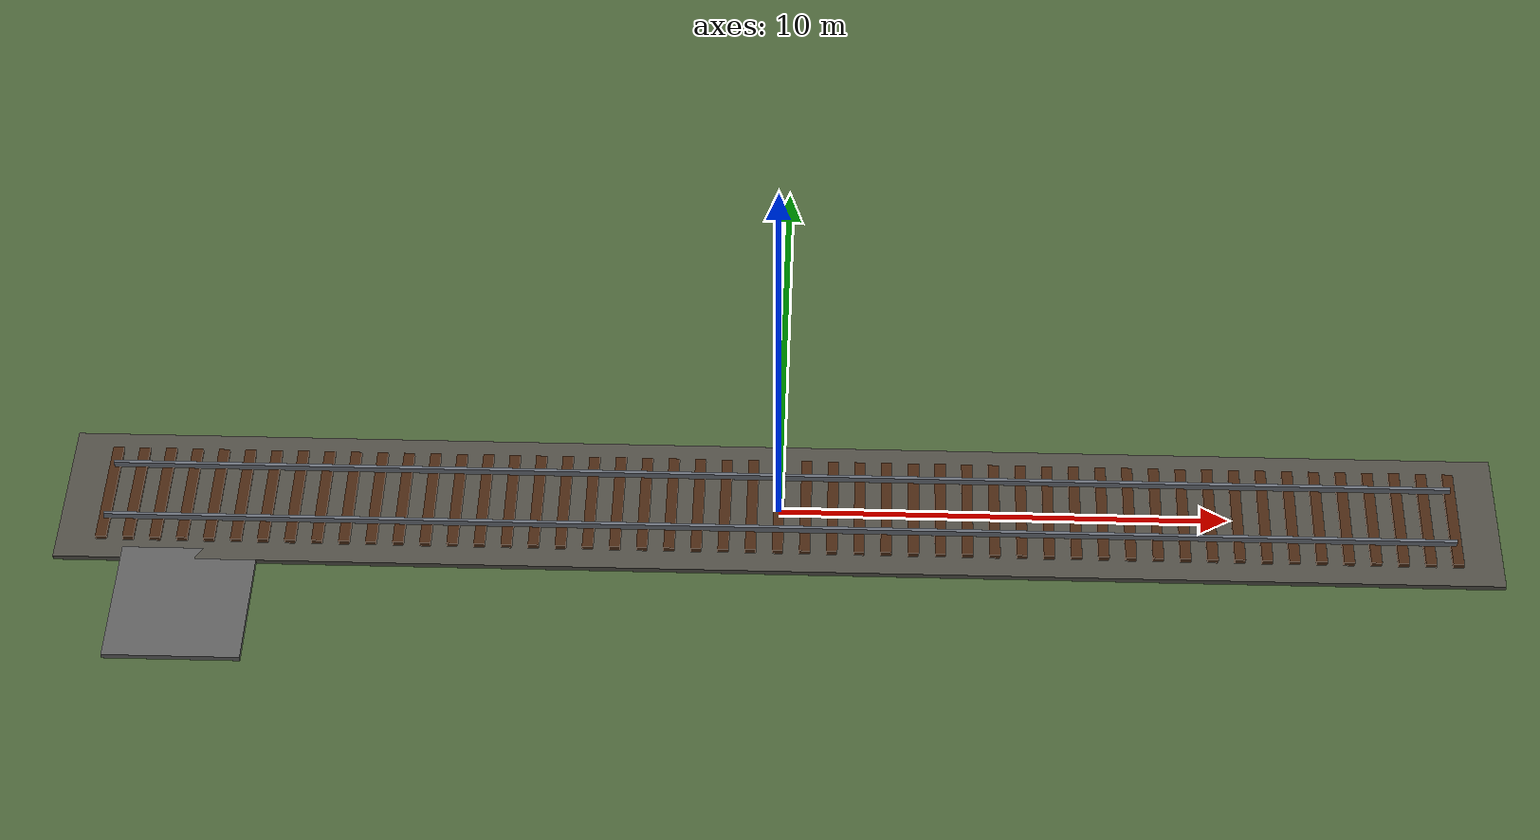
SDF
<?xml version="1.0" encoding="UTF-8"?>
<sdf version="1.9">
  <world name="rail_demo">
    <physics type="ode">
      <max_step_size>0.004</max_step_size>
      <real_time_factor>1.0</real_time_factor>
      <real_time_update_rate>250</real_time_update_rate>
    </physics>
    <gravity>0 0 -9.8</gravity>
    <magnetic_field>6e-06 2.3e-05 -4.2e-05</magnetic_field>
    <atmosphere type="adiabatic"/>

    <scene>
      <grid>false</grid>
      <ambient>0.45 0.45 0.42 1</ambient>
      <background>0.70 0.78 0.86 1</background>
      <shadows>true</shadows>
    </scene>

    <model name="ground_plane">
      <static>true</static>
      <link name="link">
        <collision name="collision">
          <geometry><plane><normal>0 0 1</normal><size>1 1</size></plane></geometry>
          <surface><friction><ode/></friction><bounce/><contact/></surface>
        </collision>
        <visual name="visual">
          <geometry><plane><normal>0 0 1</normal><size>200 100</size></plane></geometry>
          <material>
            <ambient>0.20 0.28 0.16 1</ambient>
            <diffuse>0.30 0.40 0.23 1</diffuse>
            <specular>0.02 0.02 0.02 1</specular>
          </material>
        </visual>
      </link>
    </model>

    <include>
      <uri>model://rail_track</uri>
      <name>main_track</name>
      <pose>0 0 0 0 0 0</pose>
    </include>

    <!-- A flat pad keeps the X500 away from rail collisions at startup. -->
    <model name="launch_pad">
      <static>true</static>
      <pose>-13 -3 0.06 0 0 0</pose>
      <link name="link">
        <collision name="collision">
          <geometry><box><size>3 3 0.12</size></box></geometry>
        </collision>
        <visual name="visual">
          <geometry><box><size>3 3 0.12</size></box></geometry>
          <material>
            <ambient>0.28 0.28 0.28 1</ambient>
            <diffuse>0.38 0.38 0.38 1</diffuse>
            <specular>0.08 0.08 0.08 1</specular>
          </material>
        </visual>
      </link>
    </model>

    <light name="sunUTC" type="directional">
      <pose>0 0 500 0 0 0</pose>
      <cast_shadows>true</cast_shadows>
      <intensity>1</intensity>
      <direction>-0.25 0.45 -0.86</direction>
      <diffuse>0.92 0.90 0.84 1</diffuse>
      <specular>0.25 0.25 0.25 1</specular>
      <attenuation>
        <range>2000</range><linear>0</linear><constant>1</constant><quadratic>0</quadratic>
      </attenuation>
    </light>

    <spherical_coordinates>
      <surface_model>EARTH_WGS84</surface_model>
      <world_frame_orientation>ENU</world_frame_orientation>
      <latitude_deg>47.397971057728974</latitude_deg>
      <longitude_deg>8.546163739800146</longitude_deg>
      <elevation>0</elevation>
    </spherical_coordinates>
  </world>
</sdf>

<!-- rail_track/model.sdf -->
<!-- Generated by tools/generate_gazebo_rail_world.py. -->
<sdf version="1.9">
  <model name="rail_track">
    <static>true</static>
    <link name="track">
      <collision name="ballast_collision">
        <pose>0 0 0.060 0 0 0</pose>
        <geometry><box><size>32.000 3.600 0.120</size></box></geometry>
      </collision>
      <visual name="ballast_visual">
        <pose>0 0 0.060 0 0 0</pose>
        <geometry><box><size>32.000 3.600 0.120</size></box></geometry>
        <material>
          <ambient>0.22 0.22 0.20 1</ambient>
          <diffuse>0.32 0.31 0.28 1</diffuse>
          <specular>0.04 0.04 0.04 1</specular>
        </material>
      </visual>
      <collision name="sleeper_000_collision">
        <pose>-15.000 0 0.160 0 0 0</pose>
        <geometry><box><size>0.240 2.600 0.160</size></box></geometry>
      </collision>
      <visual name="sleeper_000_visual">
        <pose>-15.000 0 0.160 0 0 0</pose>
        <geometry><box><size>0.240 2.600 0.160</size></box></geometry>
        <material>
          <ambient>0.20 0.11 0.055 1</ambient>
          <diffuse>0.29 0.16 0.075 1</diffuse>
          <specular>0.015 0.015 0.015 1</specular>
        </material>
      </visual>
      <collision name="sleeper_001_collision">
        <pose>-14.400 0 0.160 0 0 0</pose>
        <geometry><box><size>0.240 2.600 0.160</size></box></geometry>
      </collision>
      <visual name="sleeper_001_visual">
        <pose>-14.400 0 0.160 0 0 0</pose>
        <geometry><box><size>0.240 2.600 0.160</size></box></geometry>
        <material>
          <ambient>0.20 0.11 0.055 1</ambient>
          <diffuse>0.29 0.16 0.075 1</diffuse>
          <specular>0.015 0.015 0.015 1</specular>
        </material>
      </visual>
      <collision name="sleeper_002_collision">
        <pose>-13.800 0 0.160 0 0 0</pose>
        <geometry><box><size>0.240 2.600 0.160</size></box></geometry>
      </collision>
      <visual name="sleeper_002_visual">
        <pose>-13.800 0 0.160 0 0 0</pose>
        <geometry><box><size>0.240 2.600 0.160</size></box></geometry>
        <material>
          <ambient>0.20 0.11 0.055 1</ambient>
          <diffuse>0.29 0.16 0.075 1</diffuse>
          <specular>0.015 0.015 0.015 1</specular>
        </material>
      </visual>
      <collision name="sleeper_003_collision">
        <pose>-13.200 0 0.160 0 0 0</pose>
        <geometry><box><size>0.240 2.600 0.160</size></box></geometry>
      </collision>
      <visual name="sleeper_003_visual">
        <pose>-13.200 0 0.160 0 0 0</pose>
        <geometry><box><size>0.240 2.600 0.160</size></box></geometry>
        <material>
          <ambient>0.20 0.11 0.055 1</ambient>
          <diffuse>0.29 0.16 0.075 1</diffuse>
          <specular>0.015 0.015 0.015 1</specular>
        </material>
      </visual>
      <collision name="sleeper_004_collision">
        <pose>-12.600 0 0.160 0 0 0</pose>
        <geometry><box><size>0.240 2.600 0.160</size></box></geometry>
      </collision>
      <visual name="sleeper_004_visual">
        <pose>-12.600 0 0.160 0 0 0</pose>
        <geometry><box><size>0.240 2.600 0.160</size></box></geometry>
        <material>
          <ambient>0.20 0.11 0.055 1</ambient>
          <diffuse>0.29 0.16 0.075 1</diffuse>
          <specular>0.015 0.015 0.015 1</specular>
        </material>
      </visual>
      <collision name="sleeper_005_collision">
        <pose>-12.000 0 0.160 0 0 0</pose>
        <geometry><box><size>0.240 2.600 0.160</size></box></geometry>
      </collision>
      <visual name="sleeper_005_visual">
        <pose>-12.000 0 0.160 0 0 0</pose>
        <geometry><box><size>0.240 2.600 0.160</size></box></geometry>
        <material>
          <ambient>0.20 0.11 0.055 1</ambient>
          <diffuse>0.29 0.16 0.075 1</diffuse>
          <specular>0.015 0.015 0.015 1</specular>
        </material>
      </visual>
      <collision name="sleeper_006_collision">
        <pose>-11.400 0 0.160 0 0 0</pose>
        <geometry><box><size>0.240 2.600 0.160</size></box></geometry>
      </collision>
      <visual name="sleeper_006_visual">
        <pose>-11.400 0 0.160 0 0 0</pose>
        <geometry><box><size>0.240 2.600 0.160</size></box></geometry>
        <material>
          <ambient>0.20 0.11 0.055 1</ambient>
          <diffuse>0.29 0.16 0.075 1</diffuse>
          <specular>0.015 0.015 0.015 1</specular>
        </material>
      </visual>
      <collision name="sleeper_007_collision">
        <pose>-10.800 0 0.160 0 0 0</pose>
        <geometry><box><size>0.240 2.600 0.160</size></box></geometry>
      </collision>
      <visual name="sleeper_007_visual">
        <pose>-10.800 0 0.160 0 0 0</pose>
        <geometry><box><size>0.240 2.600 0.160</size></box></geometry>
        <material>
          <ambient>0.20 0.11 0.055 1</ambient>
          <diffuse>0.29 0.16 0.075 1</diffuse>
          <specular>0.015 0.015 0.015 1</specular>
        </material>
      </visual>
      <collision name="sleeper_008_collision">
        <pose>-10.200 0 0.160 0 0 0</pose>
        <geometry><box><size>0.240 2.600 0.160</size></box></geometry>
      </collision>
      <visual name="sleeper_008_visual">
        <pose>-10.200 0 0.160 0 0 0</pose>
        <geometry><box><size>0.240 2.600 0.160</size></box></geometry>
        <material>
          <ambient>0.20 0.11 0.055 1</ambient>
          <diffuse>0.29 0.16 0.075 1</diffuse>
          <specular>0.015 0.015 0.015 1</specular>
        </material>
      </visual>
      <collision name="sleeper_009_collision">
        <pose>-9.600 0 0.160 0 0 0</pose>
        <geometry><box><size>0.240 2.600 0.160</size></box></geometry>
      </collision>
      <visual name="sleeper_009_visual">
        <pose>-9.600 0 0.160 0 0 0</pose>
        <geometry><box><size>0.240 2.600 0.160</size></box></geometry>
        <material>
          <ambient>0.20 0.11 0.055 1</ambient>
          <diffuse>0.29 0.16 0.075 1</diffuse>
          <specular>0.015 0.015 0.015 1</specular>
        </material>
      </visual>
      <collision name="sleeper_010_collision">
        <pose>-9.000 0 0.160 0 0 0</pose>
        <geometry><box><size>0.240 2.600 0.160</size></box></geometry>
      </collision>
      <visual name="sleeper_010_visual">
        <pose>-9.000 0 0.160 0 0 0</pose>
        <geometry><box><size>0.240 2.600 0.160</size></box></geometry>
        <material>
          <ambient>0.20 0.11 0.055 1</ambient>
          <diffuse>0.29 0.16 0.075 1</diffuse>
          <specular>0.015 0.015 0.015 1</specular>
        </material>
      </visual>
      <collision name="sleeper_011_collision">
        <pose>-8.400 0 0.160 0 0 0</pose>
        <geometry><box><size>0.240 2.600 0.160</size></box></geometry>
      </collision>
      <visual name="sleeper_011_visual">
        <pose>-8.400 0 0.160 0 0 0</pose>
        <geometry><box><size>0.240 2.600 0.160</size></box></geometry>
        <material>
          <ambient>0.20 0.11 0.055 1</ambient>
          <diffuse>0.29 0.16 0.075 1</diffuse>
          <specular>0.015 0.015 0.015 1</specular>
        </material>
      </visual>
      <collision name="sleeper_012_collision">
        <pose>-7.800 0 0.160 0 0 0</pose>
        <geometry><box><size>0.240 2.600 0.160</size></box></geometry>
      </collision>
      <visual name="sleeper_012_visual">
        <pose>-7.800 0 0.160 0 0 0</pose>
        <geometry><box><size>0.240 2.600 0.160</size></box></geometry>
        <material>
          <ambient>0.20 0.11 0.055 1</ambient>
          <diffuse>0.29 0.16 0.075 1</diffuse>
          <specular>0.015 0.015 0.015 1</specular>
        </material>
      </visual>
      <collision name="sleeper_013_collision">
        <pose>-7.200 0 0.160 0 0 0</pose>
        <geometry><box><size>0.240 2.600 0.160</size></box></geometry>
      </collision>
      <visual name="sleeper_013_visual">
        <pose>-7.200 0 0.160 0 0 0</pose>
        <geometry><box><size>0.240 2.600 0.160</size></box></geometry>
        <material>
          <ambient>0.20 0.11 0.055 1</ambient>
          <diffuse>0.29 0.16 0.075 1</diffuse>
          <specular>0.015 0.015 0.015 1</specular>
        </material>
      </visual>
      <collision name="sleeper_014_collision">
        <pose>-6.600 0 0.160 0 0 0</pose>
        <geometry><box><size>0.240 2.600 0.160</size></box></geometry>
      </collision>
      <visual name="sleeper_014_visual">
        <pose>-6.600 0 0.160 0 0 0</pose>
        <geometry><box><size>0.240 2.600 0.160</size></box></geometry>
        <material>
          <ambient>0.20 0.11 0.055 1</ambient>
          <diffuse>0.29 0.16 0.075 1</diffuse>
          <specular>0.015 0.015 0.015 1</specular>
        </material>
      </visual>
      <collision name="sleeper_015_collision">
        <pose>-6.000 0 0.160 0 0 0</pose>
        <geometry><box><size>0.240 2.600 0.160</size></box></geometry>
      </collision>
      <visual name="sleeper_015_visual">
        <pose>-6.000 0 0.160 0 0 0</pose>
        <geometry><box><size>0.240 2.600 0.160</size></box></geometry>
        <material>
          <ambient>0.20 0.11 0.055 1</ambient>
          <diffuse>0.29 0.16 0.075 1</diffuse>
          <specular>0.015 0.015 0.015 1</specular>
        </material>
      </visual>
      <collision name="sleeper_016_collision">
        <pose>-5.400 0 0.160 0 0 0</pose>
        <geometry><box><size>0.240 2.600 0.160</size></box></geometry>
      </collision>
      <visual name="sleeper_016_visual">
        <pose>-5.400 0 0.160 0 0 0</pose>
        <geometry><box><size>0.240 2.600 0.160</size></box></geometry>
        <material>
          <ambient>0.20 0.11 0.055 1</ambient>
          <diffuse>0.29 0.16 0.075 1</diffuse>
          <specular>0.015 0.015 0.015 1</specular>
        </material>
      </visual>
      <collision name="sleeper_017_collision">
        <pose>-4.800 0 0.160 0 0 0</pose>
        <geometry><box><size>0.240 2.600 0.160</size></box></geometry>
      </collision>
      <visual name="sleeper_017_visual">
        <pose>-4.800 0 0.160 0 0 0</pose>
        <geometry><box><size>0.240 2.600 0.160</size></box></geometry>
        <material>
          <ambient>0.20 0.11 0.055 1</ambient>
          <diffuse>0.29 0.16 0.075 1</diffuse>
          <specular>0.015 0.015 0.015 1</specular>
        </material>
      </visual>
      <collision name="sleeper_018_collision">
        <pose>-4.200 0 0.160 0 0 0</pose>
        <geometry><box><size>0.240 2.600 0.160</size></box></geometry>
      </collision>
      <visual name="sleeper_018_visual">
        <pose>-4.200 0 0.160 0 0 0</pose>
        <geometry><box><size>0.240 2.600 0.160</size></box></geometry>
        <material>
          <ambient>0.20 0.11 0.055 1</ambient>
          <diffuse>0.29 0.16 0.075 1</diffuse>
          <specular>0.015 0.015 0.015 1</specular>
        </material>
      </visual>
      <collision name="sleeper_019_collision">
        <pose>-3.600 0 0.160 0 0 0</pose>
        <geometry><box><size>0.240 2.600 0.160</size></box></geometry>
      </collision>
      <visual name="sleeper_019_visual">
        <pose>-3.600 0 0.160 0 0 0</pose>
        <geometry><box><size>0.240 2.600 0.160</size></box></geometry>
        <material>
          <ambient>0.20 0.11 0.055 1</ambient>
          <diffuse>0.29 0.16 0.075 1</diffuse>
          <specular>0.015 0.015 0.015 1</specular>
        </material>
      </visual>
      <collision name="sleeper_020_collision">
        <pose>-3.000 0 0.160 0 0 0</pose>
        <geometry><box><size>0.240 2.600 0.160</size></box></geometry>
      </collision>
      <visual name="sleeper_020_visual">
        <pose>-3.000 0 0.160 0 0 0</pose>
        <geometry><box><size>0.240 2.600 0.160</size></box></geometry>
        <material>
          <ambient>0.20 0.11 0.055 1</ambient>
          <diffuse>0.29 0.16 0.075 1</diffuse>
          <specular>0.015 0.015 0.015 1</specular>
        </material>
      </visual>
      <collision name="sleeper_021_collision">
        <pose>-2.400 0 0.160 0 0 0</pose>
        <geometry><box><size>0.240 2.600 0.160</size></box></geometry>
      </collision>
      <visual name="sleeper_021_visual">
        <pose>-2.400 0 0.160 0 0 0</pose>
        <geometry><box><size>0.240 2.600 0.160</size></box></geometry>
        <material>
          <ambient>0.20 0.11 0.055 1</ambient>
          <diffuse>0.29 0.16 0.075 1</diffuse>
          <specular>0.015 0.015 0.015 1</specular>
        </material>
      </visual>
      <collision name="sleeper_022_collision">
        <pose>-1.800 0 0.160 0 0 0</pose>
        <geometry><box><size>0.240 2.600 0.160</size></box></geometry>
      </collision>
      <visual name="sleeper_022_visual">
        <pose>-1.800 0 0.160 0 0 0</pose>
        <geometry><box><size>0.240 2.600 0.160</size></box></geometry>
        <material>
          <ambient>0.20 0.11 0.055 1</ambient>
          <diffuse>0.29 0.16 0.075 1</diffuse>
          <specular>0.015 0.015 0.015 1</specular>
        </material>
      </visual>
      <collision name="sleeper_023_collision">
        <pose>-1.200 0 0.160 0 0 0</pose>
        <geometry><box><size>0.240 2.600 0.160</size></box></geometry>
      </collision>
      <visual name="sleeper_023_visual">
        <pose>-1.200 0 0.160 0 0 0</pose>
        <geometry><box><size>0.240 2.600 0.160</size></box></geometry>
        <material>
          <ambient>0.20 0.11 0.055 1</ambient>
          <diffuse>0.29 0.16 0.075 1</diffuse>
          <specular>0.015 0.015 0.015 1</specular>
        </material>
      </visual>
      <collision name="sleeper_024_collision">
        <pose>-0.600 0 0.160 0 0 0</pose>
        <geometry><box><size>0.240 2.600 0.160</size></box></geometry>
      </collision>
      <visual name="sleeper_024_visual">
        <pose>-0.600 0 0.160 0 0 0</pose>
        <geometry><box><size>0.240 2.600 0.160</size></box></geometry>
        <material>
          <ambient>0.20 0.11 0.055 1</ambient>
          <diffuse>0.29 0.16 0.075 1</diffuse>
          <specular>0.015 0.015 0.015 1</specular>
        </material>
      </visual>
      <collision name="sleeper_025_collision">
        <pose>0.000 0 0.160 0 0 0</pose>
        <geometry><box><size>0.240 2.600 0.160</size></box></geometry>
      </collision>
      <visual name="sleeper_025_visual">
        <pose>0.000 0 0.160 0 0 0</pose>
        <geometry><box><size>0.240 2.600 0.160</size></box></geometry>
        <material>
          <ambient>0.20 0.11 0.055 1</ambient>
          <diffuse>0.29 0.16 0.075 1</diffuse>
          <specular>0.015 0.015 0.015 1</specular>
        </material>
      </visual>
      <collision name="sleeper_026_collision">
        <pose>0.600 0 0.160 0 0 0</pose>
        <geometry><box><size>0.240 2.600 0.160</size></box></geometry>
      </collision>
      <visual name="sleeper_026_visual">
        <pose>0.600 0 0.160 0 0 0</pose>
        <geometry><box><size>0.240 2.600 0.160</size></box></geometry>
        <material>
          <ambient>0.20 0.11 0.055 1</ambient>
          <diffuse>0.29 0.16 0.075 1</diffuse>
          <specular>0.015 0.015 0.015 1</specular>
        </material>
      </visual>
      <collision name="sleeper_027_collision">
        <pose>1.200 0 0.160 0 0 0</pose>
        <geometry><box><size>0.240 2.600 0.160</size></box></geometry>
      </collision>
      <visual name="sleeper_027_visual">
        <pose>1.200 0 0.160 0 0 0</pose>
        <geometry><box><size>0.240 2.600 0.160</size></box></geometry>
        <material>
          <ambient>0.20 0.11 0.055 1</ambient>
          <diffuse>0.29 0.16 0.075 1</diffuse>
          <specular>0.015 0.015 0.015 1</specular>
        </material>
      </visual>
      <collision name="sleeper_028_collision">
        <pose>1.800 0 0.160 0 0 0</pose>
        <geometry><box><size>0.240 2.600 0.160</size></box></geometry>
      </collision>
      <visual name="sleeper_028_visual">
        <pose>1.800 0 0.160 0 0 0</pose>
        <geometry><box><size>0.240 2.600 0.160</size></box></geometry>
        <material>
          <ambient>0.20 0.11 0.055 1</ambient>
          <diffuse>0.29 0.16 0.075 1</diffuse>
          <specular>0.015 0.015 0.015 1</specular>
        </material>
      </visual>
      <collision name="sleeper_029_collision">
        <pose>2.400 0 0.160 0 0 0</pose>
        <geometry><box><size>0.240 2.600 0.160</size></box></geometry>
      </collision>
      <visual name="sleeper_029_visual">
        <pose>2.400 0 0.160 0 0 0</pose>
        <geometry><box><size>0.240 2.600 0.160</size></box></geometry>
        <material>
          <ambient>0.20 0.11 0.055 1</ambient>
          <diffuse>0.29 0.16 0.075 1</diffuse>
          <specular>0.015 0.015 0.015 1</specular>
        </material>
      </visual>
      <collision name="sleeper_030_collision">
        <pose>3.000 0 0.160 0 0 0</pose>
        <geometry><box><size>0.240 2.600 0.160</size></box></geometry>
      </collision>
      <visual name="sleeper_030_visual">
        <pose>3.000 0 0.160 0 0 0</pose>
        <geometry><box><size>0.240 2.600 0.160</size></box></geometry>
        <material>
          <ambient>0.20 0.11 0.055 1</ambient>
          <diffuse>0.29 0.16 0.075 1</diffuse>
          <specular>0.015 0.015 0.015 1</specular>
        </material>
      </visual>
      <collision name="sleeper_031_collision">
        <pose>3.600 0 0.160 0 0 0</pose>
        <geometry><box><size>0.240 2.600 0.160</size></box></geometry>
      </collision>
      <visual name="sleeper_031_visual">
        <pose>3.600 0 0.160 0 0 0</pose>
        <geometry><box><size>0.240 2.600 0.160</size></box></geometry>
        <material>
          <ambient>0.20 0.11 0.055 1</ambient>
          <diffuse>0.29 0.16 0.075 1</diffuse>
          <specular>0.015 0.015 0.015 1</specular>
        </material>
      </visual>
      <collision name="sleeper_032_collision">
        <pose>4.200 0 0.160 0 0 0</pose>
        <geometry><box><size>0.240 2.600 0.160</size></box></geometry>
      </collision>
      <visual name="sleeper_032_visual">
        <pose>4.200 0 0.160 0 0 0</pose>
        <geometry><box><size>0.240 2.600 0.160</size></box></geometry>
        <material>
          <ambient>0.20 0.11 0.055 1</ambient>
          <diffuse>0.29 0.16 0.075 1</diffuse>
          <specular>0.015 0.015 0.015 1</specular>
        </material>
      </visual>
      <collision name="sleeper_033_collision">
        <pose>4.800 0 0.160 0 0 0</pose>
        <geometry><box><size>0.240 2.600 0.160</size></box></geometry>
      </collision>
      <visual name="sleeper_033_visual">
        <pose>4.800 0 0.160 0 0 0</pose>
        <geometry><box><size>0.240 2.600 0.160</size></box></geometry>
        <material>
          <ambient>0.20 0.11 0.055 1</ambient>
          <diffuse>0.29 0.16 0.075 1</diffuse>
          <specular>0.015 0.015 0.015 1</specular>
        </material>
      </visual>
      <collision name="sleeper_034_collision">
        <pose>5.400 0 0.160 0 0 0</pose>
        <geometry><box><size>0.240 2.600 0.160</size></box></geometry>
      </collision>
      <visual name="sleeper_034_visual">
        <pose>5.400 0 0.160 0 0 0</pose>
        <geometry><box><size>0.240 2.600 0.160</size></box></geometry>
        <material>
          <ambient>0.20 0.11 0.055 1</ambient>
          <diffuse>0.29 0.16 0.075 1</diffuse>
          <specular>0.015 0.015 0.015 1</specular>
        </material>
      </visual>
      <collision name="sleeper_035_collision">
        <pose>6.000 0 0.160 0 0 0</pose>
        <geometry><box><size>0.240 2.600 0.160</size></box></geometry>
      </collision>
      <visual name="sleeper_035_visual">
        <pose>6.000 0 0.160 0 0 0</pose>
        <geometry><box><size>0.240 2.600 0.160</size></box></geometry>
        <material>
          <ambient>0.20 0.11 0.055 1</ambient>
          <diffuse>0.29 0.16 0.075 1</diffuse>
          <specular>0.015 0.015 0.015 1</specular>
        </material>
      </visual>
      <collision name="sleeper_036_collision">
        <pose>6.600 0 0.160 0 0 0</pose>
        <geometry><box><size>0.240 2.600 0.160</size></box></geometry>
      </collision>
      <visual name="sleeper_036_visual">
        <pose>6.600 0 0.160 0 0 0</pose>
        <geometry><box><size>0.240 2.600 0.160</size></box></geometry>
        <material>
          <ambient>0.20 0.11 0.055 1</ambient>
          <diffuse>0.29 0.16 0.075 1</diffuse>
          <specular>0.015 0.015 0.015 1</specular>
        </material>
      </visual>
      <collision name="sleeper_037_collision">
        <pose>7.200 0 0.160 0 0 0</pose>
        <geometry><box><size>0.240 2.600 0.160</size></box></geometry>
      </collision>
      <visual name="sleeper_037_visual">
        <pose>7.200 0 0.160 0 0 0</pose>
        <geometry><box><size>0.240 2.600 0.160</size></box></geometry>
        <material>
          <ambient>0.20 0.11 0.055 1</ambient>
          <diffuse>0.29 0.16 0.075 1</diffuse>
          <specular>0.015 0.015 0.015 1</specular>
        </material>
      </visual>
      <collision name="sleeper_038_collision">
        <pose>7.800 0 0.160 0 0 0</pose>
        <geometry><box><size>0.240 2.600 0.160</size></box></geometry>
      </collision>
      <visual name="sleeper_038_visual">
        <pose>7.800 0 0.160 0 0 0</pose>
        <geometry><box><size>0.240 2.600 0.160</size></box></geometry>
        <material>
          <ambient>0.20 0.11 0.055 1</ambient>
          <diffuse>0.29 0.16 0.075 1</diffuse>
          <specular>0.015 0.015 0.015 1</specular>
        </material>
      </visual>
      <collision name="sleeper_039_collision">
        <pose>8.400 0 0.160 0 0 0</pose>
        <geometry><box><size>0.240 2.600 0.160</size></box></geometry>
      </collision>
      <visual name="sleeper_039_visual">
        <pose>8.400 0 0.160 0 0 0</pose>
        <geometry><box><size>0.240 2.600 0.160</size></box></geometry>
        <material>
          <ambient>0.20 0.11 0.055 1</ambient>
          <diffuse>0.29 0.16 0.075 1</diffuse>
          <specular>0.015 0.015 0.015 1</specular>
        </material>
      </visual>
      <collision name="sleeper_040_collision">
        <pose>9.000 0 0.160 0 0 0</pose>
        <geometry><box><size>0.240 2.600 0.160</size></box></geometry>
      </collision>
      <visual name="sleeper_040_visual">
        <pose>9.000 0 0.160 0 0 0</pose>
        <geometry><box><size>0.240 2.600 0.160</size></box></geometry>
        <material>
          <ambient>0.20 0.11 0.055 1</ambient>
          <diffuse>0.29 0.16 0.075 1</diffuse>
          <specular>0.015 0.015 0.015 1</specular>
        </material>
      </visual>
      <collision name="sleeper_041_collision">
        <pose>9.600 0 0.160 0 0 0</pose>
        <geometry><box><size>0.240 2.600 0.160</size></box></geometry>
      </collision>
      <visual name="sleeper_041_visual">
        <pose>9.600 0 0.160 0 0 0</pose>
        <geometry><box><size>0.240 2.600 0.160</size></box></geometry>
        <material>
          <ambient>0.20 0.11 0.055 1</ambient>
          <diffuse>0.29 0.16 0.075 1</diffuse>
          <specular>0.015 0.015 0.015 1</specular>
        </material>
      </visual>
      <collision name="sleeper_042_collision">
        <pose>10.200 0 0.160 0 0 0</pose>
        <geometry><box><size>0.240 2.600 0.160</size></box></geometry>
      </collision>
      <visual name="sleeper_042_visual">
        <pose>10.200 0 0.160 0 0 0</pose>
        <geometry><box><size>0.240 2.600 0.160</size></box></geometry>
        <material>
          <ambient>0.20 0.11 0.055 1</ambient>
          <diffuse>0.29 0.16 0.075 1</diffuse>
          <specular>0.015 0.015 0.015 1</specular>
        </material>
      </visual>
      <collision name="sleeper_043_collision">
        <pose>10.800 0 0.160 0 0 0</pose>
        <geometry><box><size>0.240 2.600 0.160</size></box></geometry>
      </collision>
      <visual name="sleeper_043_visual">
        <pose>10.800 0 0.160 0 0 0</pose>
        <geometry><box><size>0.240 2.600 0.160</size></box></geometry>
        <material>
          <ambient>0.20 0.11 0.055 1</ambient>
          <diffuse>0.29 0.16 0.075 1</diffuse>
          <specular>0.015 0.015 0.015 1</specular>
        </material>
      </visual>
      <collision name="sleeper_044_collision">
        <pose>11.400 0 0.160 0 0 0</pose>
        <geometry><box><size>0.240 2.600 0.160</size></box></geometry>
      </collision>
      <visual name="sleeper_044_visual">
        <pose>11.400 0 0.160 0 0 0</pose>
        <geometry><box><size>0.240 2.600 0.160</size></box></geometry>
        <material>
          <ambient>0.20 0.11 0.055 1</ambient>
          <diffuse>0.29 0.16 0.075 1</diffuse>
          <specular>0.015 0.015 0.015 1</specular>
        </material>
      </visual>
      <collision name="sleeper_045_collision">
        <pose>12.000 0 0.160 0 0 0</pose>
        <geometry><box><size>0.240 2.600 0.160</size></box></geometry>
      </collision>
      <visual name="sleeper_045_visual">
        <pose>12.000 0 0.160 0 0 0</pose>
        <geometry><box><size>0.240 2.600 0.160</size></box></geometry>
        <material>
          <ambient>0.20 0.11 0.055 1</ambient>
          <diffuse>0.29 0.16 0.075 1</diffuse>
          <specular>0.015 0.015 0.015 1</specular>
        </material>
      </visual>
      <collision name="sleeper_046_collision">
        <pose>12.600 0 0.160 0 0 0</pose>
        <geometry><box><size>0.240 2.600 0.160</size></box></geometry>
      </collision>
      <visual name="sleeper_046_visual">
        <pose>12.600 0 0.160 0 0 0</pose>
        <geometry><box><size>0.240 2.600 0.160</size></box></geometry>
        <material>
          <ambient>0.20 0.11 0.055 1</ambient>
          <diffuse>0.29 0.16 0.075 1</diffuse>
          <specular>0.015 0.015 0.015 1</specular>
        </material>
      </visual>
      <collision name="sleeper_047_collision">
        <pose>13.200 0 0.160 0 0 0</pose>
        <geometry><box><size>0.240 2.600 0.160</size></box></geometry>
      </collision>
      <visual name="sleeper_047_visual">
        <pose>13.200 0 0.160 0 0 0</pose>
        <geometry><box><size>0.240 2.600 0.160</size></box></geometry>
        <material>
          <ambient>0.20 0.11 0.055 1</ambient>
          <diffuse>0.29 0.16 0.075 1</diffuse>
          <specular>0.015 0.015 0.015 1</specular>
        </material>
      </visual>
      <collision name="sleeper_048_collision">
        <pose>13.800 0 0.160 0 0 0</pose>
        <geometry><box><size>0.240 2.600 0.160</size></box></geometry>
      </collision>
      <visual name="sleeper_048_visual">
        <pose>13.800 0 0.160 0 0 0</pose>
        <geometry><box><size>0.240 2.600 0.160</size></box></geometry>
        <material>
          <ambient>0.20 0.11 0.055 1</ambient>
          <diffuse>0.29 0.16 0.075 1</diffuse>
          <specular>0.015 0.015 0.015 1</specular>
        </material>
      </visual>
      <collision name="sleeper_049_collision">
        <pose>14.400 0 0.160 0 0 0</pose>
        <geometry><box><size>0.240 2.600 0.160</size></box></geometry>
      </collision>
      <visual name="sleeper_049_visual">
        <pose>14.400 0 0.160 0 0 0</pose>
        <geometry><box><size>0.240 2.600 0.160</size></box></geometry>
        <material>
          <ambient>0.20 0.11 0.055 1</ambient>
          <diffuse>0.29 0.16 0.075 1</diffuse>
          <specular>0.015 0.015 0.015 1</specular>
        </material>
      </visual>
      <collision name="sleeper_050_collision">
        <pose>15.000 0 0.160 0 0 0</pose>
        <geometry><box><size>0.240 2.600 0.160</size></box></geometry>
      </collision>
      <visual name="sleeper_050_visual">
        <pose>15.000 0 0.160 0 0 0</pose>
        <geometry><box><size>0.240 2.600 0.160</size></box></geometry>
        <material>
          <ambient>0.20 0.11 0.055 1</ambient>
          <diffuse>0.29 0.16 0.075 1</diffuse>
          <specular>0.015 0.015 0.015 1</specular>
        </material>
      </visual>
      <collision name="rail_left_collision">
        <pose>0 0.7525 0.315 0 0 0</pose>
        <geometry><box><size>30.000 0.070 0.150</size></box></geometry>
      </collision>
      <visual name="rail_left_visual">
        <pose>0 0.7525 0.315 0 0 0</pose>
        <geometry><box><size>30.000 0.070 0.150</size></box></geometry>
        <material>
          <ambient>0.24 0.25 0.27 1</ambient>
          <diffuse>0.42 0.44 0.48 1</diffuse>
          <specular>0.70 0.70 0.72 1</specular>
        </material>
      </visual>
      <collision name="rail_right_collision">
        <pose>0 -0.7525 0.315 0 0 0</pose>
        <geometry><box><size>30.000 0.070 0.150</size></box></geometry>
      </collision>
      <visual name="rail_right_visual">
        <pose>0 -0.7525 0.315 0 0 0</pose>
        <geometry><box><size>30.000 0.070 0.150</size></box></geometry>
        <material>
          <ambient>0.24 0.25 0.27 1</ambient>
          <diffuse>0.42 0.44 0.48 1</diffuse>
          <specular>0.70 0.70 0.72 1</specular>
        </material>
      </visual>
    </link>
  </model>
</sdf>
